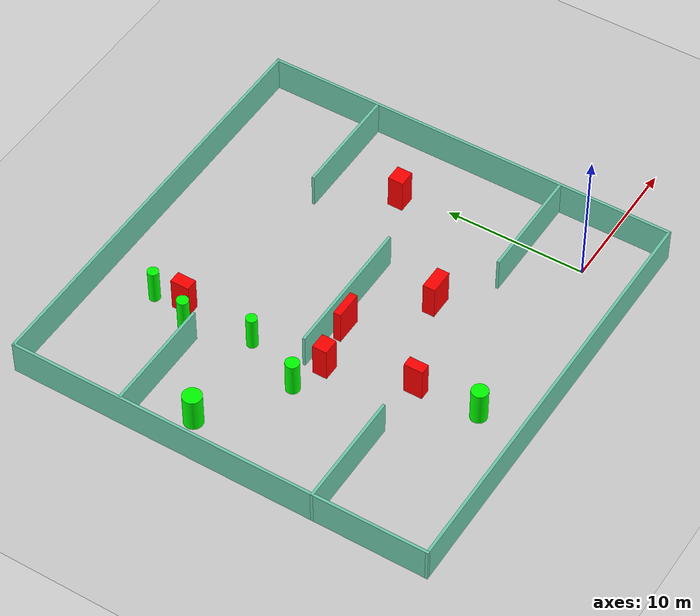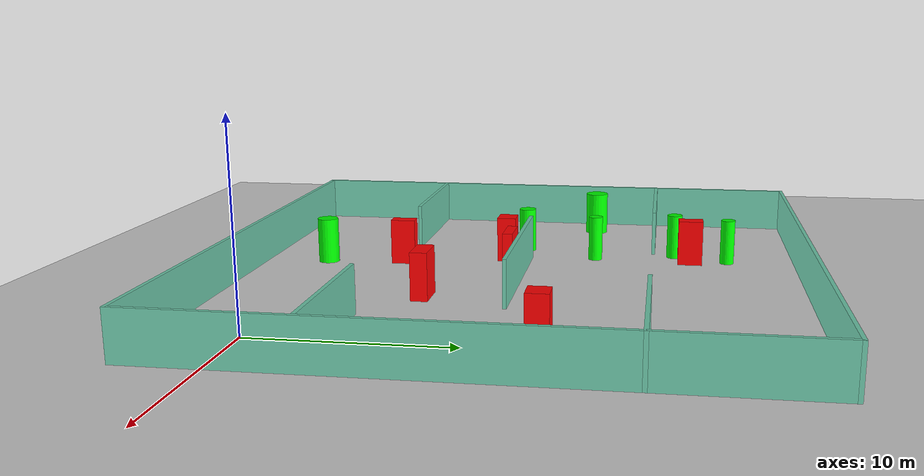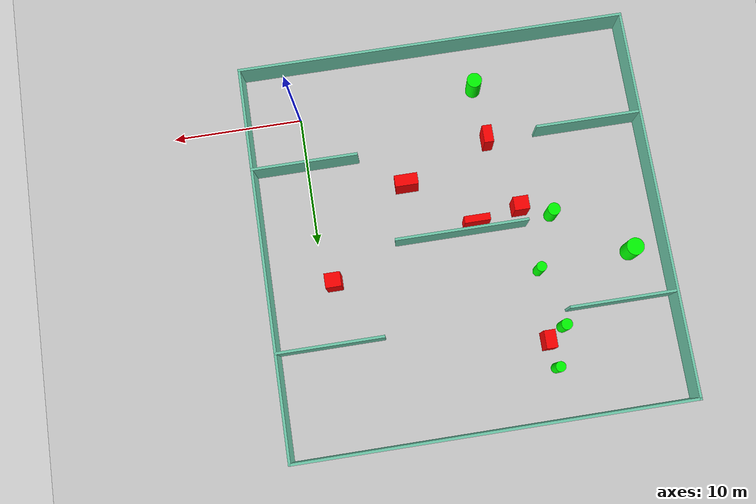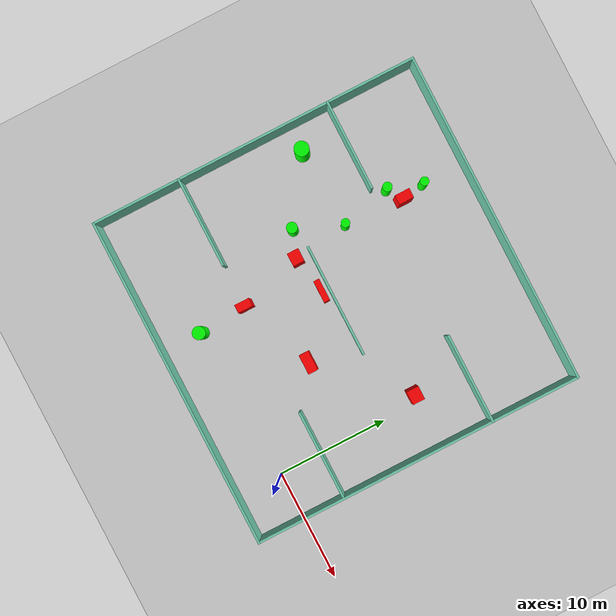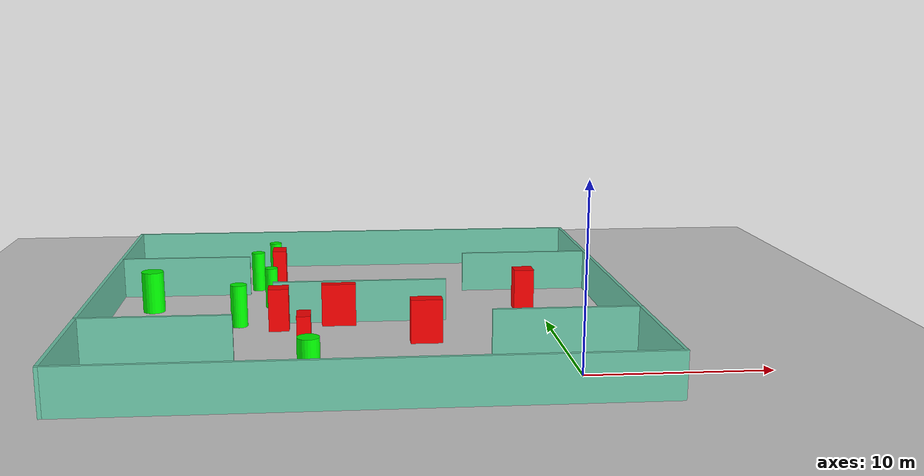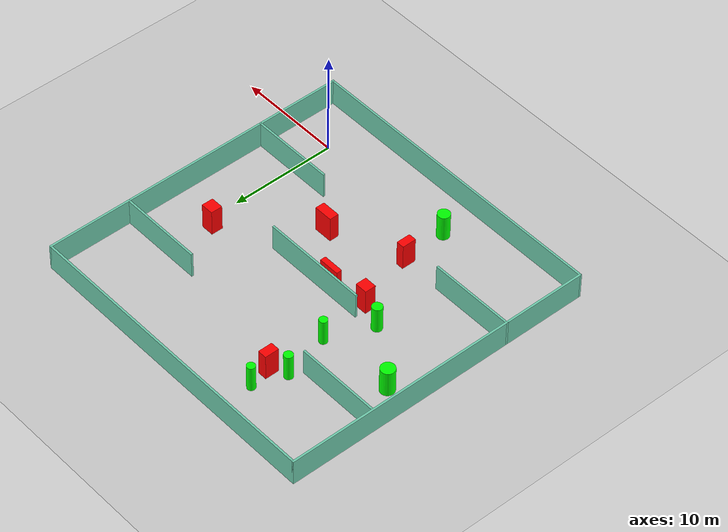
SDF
<sdf version="1.7">
 <world name="default">
  <light name="sun" type="directional">
   <pose>0 0 10 0 -0 0</pose>
   <diffuse>0.8 0.8 0.8 1</diffuse>
   <specular>0.2 0.2 0.2 1</specular>
   <attenuation>
    <range>1000</range>
    <constant>0.9</constant>
    <linear>0.01</linear>
    <quadratic>0.001</quadratic>
   </attenuation>
   <direction>-0.5 0.1 -0.9</direction>
   <spot><inner_angle>0</inner_angle><outer_angle>0</outer_angle><falloff>0</falloff></spot>
  </light>
  <model name="ground_plane">
   <static>1</static>
   <link name="link">
    <collision name="collision">
     <geometry><plane><normal>0 0 1</normal><size>100 100</size></plane></geometry>
     <surface>
      <contact><collide_bitmask>65535</collide_bitmask></contact>
      <friction><ode><mu>100</mu><mu2>50</mu2></ode></friction>
     </surface>
    </collision>
    <visual name="visual">
     <cast_shadows>0</cast_shadows>
     <geometry><plane><normal>0 0 1</normal><size>100 100</size></plane></geometry>
     <material>
      <script><uri>file://media/materials/scripts/gazebo.material</uri><name>Gazebo/Grey</name></script>
     </material>
    </visual>
   </link>
  </model>
  <gravity>0 0 -9.8</gravity>
  <magnetic_field>6e-06 2.3e-05 -4.2e-05</magnetic_field>
  <atmosphere type="adiabatic"/>
  <physics type="ode">
   <max_step_size>0.001</max_step_size>
   <real_time_factor>1</real_time_factor>
   <real_time_update_rate>1000</real_time_update_rate>
  </physics>
  <scene><ambient>0.4 0.4 0.4 1</ambient><background>0.7 0.7 0.7 1</background><shadows>1</shadows></scene>
  <spherical_coordinates>
   <surface_model>EARTH_WGS84</surface_model>
   <latitude_deg>0</latitude_deg>
   <longitude_deg>0</longitude_deg>
   <elevation>0</elevation>
   <heading_deg>0</heading_deg>
  </spherical_coordinates>
  <model name="my_base_walls">
   <link name="Wall_10">
    <collision name="Wall_10_Collision">
     <geometry><box><size>8.2 0.2 2.5</size></box></geometry>
     <pose>0 0 1.25 0 -0 0</pose>
    </collision>
    <visual name="Wall_10_Visual">
     <pose>0 0 1.25 0 -0 0</pose>
     <geometry><box><size>8.2 0.2 2.5</size></box></geometry>
     <material>
      <script><uri>file://media/materials/scripts/gazebo.material</uri><name>Gazebo/Grey</name></script>
      <ambient>0.435294 0.796078 0.67451 1</ambient>
     </material>
     <meta><layer>0</layer></meta>
    </visual>
    <pose>-11 -7 0 0 -0 0</pose>
   </link>
   <link name="Wall_12">
    <collision name="Wall_12_Collision">
     <geometry><box><size>8.2 0.2 2.5</size></box></geometry>
     <pose>0 0 1.25 0 -0 0</pose>
    </collision>
    <visual name="Wall_12_Visual">
     <pose>0 0 1.25 0 -0 0</pose>
     <geometry><box><size>8.2 0.2 2.5</size></box></geometry>
     <material>
      <script><uri>file://media/materials/scripts/gazebo.material</uri><name>Gazebo/Grey</name></script>
      <ambient>0.435294 0.796078 0.67451 1</ambient>
     </material>
     <meta><layer>0</layer></meta>
    </visual>
    <pose>-11 7 0 0 -0 0</pose>
   </link>
   <link name="Wall_14">
    <collision name="Wall_14_Collision">
     <geometry><box><size>8.2 0.2 2.5</size></box></geometry>
     <pose>0 0 1.25 0 -0 0</pose>
    </collision>
    <visual name="Wall_14_Visual">
     <pose>0 0 1.25 0 -0 0</pose>
     <geometry><box><size>8.2 0.2 2.5</size></box></geometry>
     <material>
      <script><uri>file://media/materials/scripts/gazebo.material</uri><name>Gazebo/Grey</name></script>
      <ambient>0.435294 0.796078 0.67451 1</ambient>
     </material>
     <meta><layer>0</layer></meta>
    </visual>
    <pose>11 7 0 0 -0 3.14159</pose>
   </link>
   <link name="Wall_16">
    <collision name="Wall_16_Collision">
     <geometry><box><size>10.2 0.2 2.5</size></box></geometry>
     <pose>0 0 1.25 0 -0 0</pose>
    </collision>
    <visual name="Wall_16_Visual">
     <pose>0 0 1.25 0 -0 0</pose>
     <geometry><box><size>10.2 0.2 2.5</size></box></geometry>
     <material>
      <script><uri>file://media/materials/scripts/gazebo.material</uri><name>Gazebo/Grey</name></script>
      <ambient>0.435294 0.796078 0.67451 1</ambient>
     </material>
     <meta><layer>0</layer></meta>
    </visual>
    <pose>0 0 0 0 -0 3.14159</pose>
   </link>
   <link name="Wall_2">
    <collision name="Wall_2_Collision">
     <geometry><box><size>30.2 0.2 2.5</size></box></geometry>
     <pose>0 0 1.25 0 -0 0</pose>
    </collision>
    <visual name="Wall_2_Visual">
     <pose>0 0 1.25 0 -0 0</pose>
     <geometry><box><size>30.2 0.2 2.5</size></box></geometry>
     <material>
      <script><uri>file://media/materials/scripts/gazebo.material</uri><name>Gazebo/Grey</name></script>
      <ambient>0.435294 0.796078 0.67451 1</ambient>
     </material>
     <meta><layer>0</layer></meta>
    </visual>
    <pose>0 -15 0 0 -0 3.14159</pose>
   </link>
   <link name="Wall_3">
    <collision name="Wall_3_Collision">
     <geometry><box><size>30.2 0.2 2.5</size></box></geometry>
     <pose>0 0 1.25 0 -0 0</pose>
    </collision>
    <visual name="Wall_3_Visual">
     <pose>0 0 1.25 0 -0 0</pose>
     <geometry><box><size>30.2 0.2 2.5</size></box></geometry>
     <material>
      <script><uri>file://media/materials/scripts/gazebo.material</uri><name>Gazebo/Grey</name></script>
      <ambient>0.435294 0.796078 0.67451 1</ambient>
     </material>
     <meta><layer>0</layer></meta>
    </visual>
    <pose>-15 0 0 0 -0 1.5708</pose>
   </link>
   <link name="Wall_4">
    <collision name="Wall_4_Collision">
     <geometry><box><size>30.2 0.2 2.5</size></box></geometry>
     <pose>0 0 1.25 0 -0 0</pose>
    </collision>
    <visual name="Wall_4_Visual">
     <pose>0 0 1.25 0 -0 0</pose>
     <geometry><box><size>30.2 0.2 2.5</size></box></geometry>
     <material>
      <script><uri>file://media/materials/scripts/gazebo.material</uri><name>Gazebo/Grey</name></script>
      <ambient>0.435294 0.796078 0.67451 1</ambient>
     </material>
     <meta><layer>0</layer></meta>
    </visual>
    <pose>0 15 0 0 -0 0</pose>
   </link>
   <link name="Wall_6">
    <collision name="Wall_6_Collision">
     <geometry><box><size>30.2 0.2 2.5</size></box></geometry>
     <pose>0 0 1.25 0 -0 0</pose>
    </collision>
    <visual name="Wall_6_Visual">
     <pose>0 0 1.25 0 -0 0</pose>
     <geometry><box><size>30.2 0.2 2.5</size></box></geometry>
     <material>
      <script><uri>file://media/materials/scripts/gazebo.material</uri><name>Gazebo/Grey</name></script>
      <ambient>0.435294 0.796078 0.67451 1</ambient>
     </material>
     <meta><layer>0</layer></meta>
    </visual>
    <pose>15 0 0 0 -0 1.5708</pose>
   </link>
   <link name="Wall_8">
    <collision name="Wall_8_Collision">
     <geometry><box><size>8.2 0.2 2.5</size></box></geometry>
     <pose>0 0 1.25 0 -0 0</pose>
    </collision>
    <visual name="Wall_8_Visual">
     <pose>0 0 1.25 0 -0 0</pose>
     <geometry><box><size>8.2 0.2 2.5</size></box></geometry>
     <material>
      <script><uri>file://media/materials/scripts/gazebo.material</uri><name>Gazebo/Grey</name></script>
      <ambient>0.435294 0.796078 0.67451 1</ambient>
     </material>
     <meta><layer>0</layer></meta>
    </visual>
    <pose>11 -7 0 0 -0 3.14159</pose>
   </link>
   <static>1</static>
   <pose>-11 11 0 0 -0 0</pose>
  </model>
  <model name="cylinder1">
   <static>1</static>
   <link name="link">
    <inertial>
     <mass>1</mass>
     <inertia><ixx>0.5</ixx><ixy>0</ixy><ixz>0</ixz><iyy>0.5</iyy><iyz>0</iyz><izz>1</izz></inertia>
    </inertial>
    <collision name="collision">
     <geometry><cylinder><radius>0.4829916248913542</radius><length>2.5</length></cylinder></geometry>
    </collision>
    <visual name="visual">
     <geometry><cylinder><radius>0.4829916248913542</radius><length>2.5</length></cylinder></geometry>
     <material>
      <ambient>0 1 0 1</ambient>
      <diffuse>0 1 0 1</diffuse>
      <specular>0.1 0.1 0.1 1</specular>
      <emissive>0 0 0 0</emissive>
     </material>
    </visual>
   </link>
   <pose>-18.079128598834416 10.54996172985847 1.25 0 0 0</pose>
  </model>
  <model name="cylinder2">
   <static>1</static>
   <link name="link">
    <inertial>
     <mass>1</mass>
     <inertia><ixx>0.5</ixx><ixy>0</ixy><ixz>0</ixz><iyy>0.5</iyy><iyz>0</iyz><izz>1</izz></inertia>
    </inertial>
    <collision name="collision">
     <geometry><cylinder><radius>0.38866684390527195</radius><length>2.5</length></cylinder></geometry>
    </collision>
    <visual name="visual">
     <geometry><cylinder><radius>0.38866684390527195</radius><length>2.5</length></cylinder></geometry>
     <material>
      <ambient>0 1 0 1</ambient>
      <diffuse>0 1 0 1</diffuse>
      <specular>0.1 0.1 0.1 1</specular>
      <emissive>0 0 0 0</emissive>
     </material>
    </visual>
   </link>
   <pose>-16.423744614341185 22.16459099484936 1.25 0 0 0</pose>
  </model>
  <model name="cylinder3">
   <static>1</static>
   <link name="link">
    <inertial>
     <mass>1</mass>
     <inertia><ixx>0.5</ixx><ixy>0</ixy><ixz>0</ixz><iyy>0.5</iyy><iyz>0</iyz><izz>1</izz></inertia>
    </inertial>
    <collision name="collision">
     <geometry><cylinder><radius>0.5746431844964659</radius><length>2.5</length></cylinder></geometry>
    </collision>
    <visual name="visual">
     <geometry><cylinder><radius>0.5746431844964659</radius><length>2.5</length></cylinder></geometry>
     <material>
      <ambient>0 1 0 1</ambient>
      <diffuse>0 1 0 1</diffuse>
      <specular>0.1 0.1 0.1 1</specular>
      <emissive>0 0 0 0</emissive>
     </material>
    </visual>
   </link>
   <pose>-13.85202267967708 -0.3946790303369525 1.25 0 0 0</pose>
  </model>
  <model name="cylinder4">
   <static>1</static>
   <link name="link">
    <inertial>
     <mass>1</mass>
     <inertia><ixx>0.5</ixx><ixy>0</ixy><ixz>0</ixz><iyy>0.5</iyy><iyz>0</iyz><izz>1</izz></inertia>
    </inertial>
    <collision name="collision">
     <geometry><cylinder><radius>0.6616141906937063</radius><length>2.5</length></cylinder></geometry>
    </collision>
    <visual name="visual">
     <geometry><cylinder><radius>0.6616141906937063</radius><length>2.5</length></cylinder></geometry>
     <material>
      <ambient>0 1 0 1</ambient>
      <diffuse>0 1 0 1</diffuse>
      <specular>0.1 0.1 0.1 1</specular>
      <emissive>0 0 0 0</emissive>
     </material>
    </visual>
   </link>
   <pose>-23.55124389132658 14.29696255448708 1.25 0 0 0</pose>
  </model>
  <model name="cylinder5">
   <static>1</static>
   <link name="link">
    <inertial>
     <mass>1</mass>
     <inertia><ixx>0.5</ixx><ixy>0</ixy><ixz>0</ixz><iyy>0.5</iyy><iyz>0</iyz><izz>1</izz></inertia>
    </inertial>
    <collision name="collision">
     <geometry><cylinder><radius>0.3860568205090012</radius><length>2.5</length></cylinder></geometry>
    </collision>
    <visual name="visual">
     <geometry><cylinder><radius>0.3860568205090012</radius><length>2.5</length></cylinder></geometry>
     <material>
      <ambient>0 1 0 1</ambient>
      <diffuse>0 1 0 1</diffuse>
      <specular>0.1 0.1 0.1 1</specular>
      <emissive>0 0 0 0</emissive>
     </material>
    </visual>
   </link>
   <pose>-16.374368111823344 14.700431419770617 1.25 0 0 0</pose>
  </model>
  <model name="cylinder6">
   <static>1</static>
   <link name="link">
    <inertial>
     <mass>1</mass>
     <inertia><ixx>0.5</ixx><ixy>0</ixy><ixz>0</ixz><iyy>0.5</iyy><iyz>0</iyz><izz>1</izz></inertia>
    </inertial>
    <collision name="collision">
     <geometry><cylinder><radius>0.41913732341794036</radius><length>2.5</length></cylinder></geometry>
    </collision>
    <visual name="visual">
     <geometry><cylinder><radius>0.41913732341794036</radius><length>2.5</length></cylinder></geometry>
     <material>
      <ambient>0 1 0 1</ambient>
      <diffuse>0 1 0 1</diffuse>
      <specular>0.1 0.1 0.1 1</specular>
      <emissive>0 0 0 0</emissive>
     </material>
    </visual>
   </link>
   <pose>-17.43570713507125 19.1961302527015 1.25 0 0 0</pose>
  </model>
  <model name="box1">
   <static>1</static>
   <link name="link">
    <inertial>
     <mass>1</mass>
     <inertia><ixx>0.083</ixx><ixy>0</ixy><ixz>0</ixz><iyy>0.083</iyy><iyz>0</iyz><izz>0.083</izz></inertia>
    </inertial>
    <collision name="collision">
     <geometry><box><size>1.1662304023843453 1.0444477924271776 2.5</size></box></geometry>
    </collision>
    <visual name="visual">
     <geometry><box><size>1.1662304023843453 1.0444477924271776 2.5</size></box></geometry>
     <material>
      <ambient>1 0 0 1</ambient>
      <diffuse>1 0 0 1</diffuse>
      <specular>0.1 0.1 0.1 1</specular>
      <emissive>0 0 0 0</emissive>
     </material>
    </visual>
    <sensor name="my_contact" type="contact">
     <contact><collision>box_collision</collision><topic>__default_topic__</topic></contact>
    </sensor>
   </link>
   <pose>-15.733452164200333 9.697245720200604 1.25 0 0 0</pose>
  </model>
  <model name="box2">
   <static>1</static>
   <link name="link">
    <inertial>
     <mass>1</mass>
     <inertia><ixx>0.083</ixx><ixy>0</ixy><ixz>0</ixz><iyy>0.083</iyy><iyz>0</iyz><izz>0.083</izz></inertia>
    </inertial>
    <collision name="collision">
     <geometry><box><size>1.7804841672032312 0.8798342877645817 2.5</size></box></geometry>
    </collision>
    <visual name="visual">
     <geometry><box><size>1.7804841672032312 0.8798342877645817 2.5</size></box></geometry>
     <material>
      <ambient>1 0 0 1</ambient>
      <diffuse>1 0 0 1</diffuse>
      <specular>0.1 0.1 0.1 1</specular>
      <emissive>0 0 0 0</emissive>
     </material>
    </visual>
    <sensor name="my_contact" type="contact">
     <contact><collision>box_collision</collision><topic>__default_topic__</topic></contact>
    </sensor>
   </link>
   <pose>-7.446236677447299 6.589635795043776 1.25 0 0 0</pose>
  </model>
  <model name="box3">
   <static>1</static>
   <link name="link">
    <inertial>
     <mass>1</mass>
     <inertia><ixx>0.083</ixx><ixy>0</ixy><ixz>0</ixz><iyy>0.083</iyy><iyz>0</iyz><izz>0.083</izz></inertia>
    </inertial>
    <collision name="collision">
     <geometry><box><size>1.9849699128878855 0.5317540283955303 2.5</size></box></geometry>
    </collision>
    <visual name="visual">
     <geometry><box><size>1.9849699128878855 0.5317540283955303 2.5</size></box></geometry>
     <material>
      <ambient>1 0 0 1</ambient>
      <diffuse>1 0 0 1</diffuse>
      <specular>0.1 0.1 0.1 1</specular>
      <emissive>0 0 0 0</emissive>
     </material>
    </visual>
    <sensor name="my_contact" type="contact">
     <contact><collision>box_collision</collision><topic>__default_topic__</topic></contact>
    </sensor>
   </link>
   <pose>-12.27056416675801 10.33537796827302 1.25 0 0 0</pose>
  </model>
  <model name="box4">
   <static>1</static>
   <link name="link">
    <inertial>
     <mass>1</mass>
     <inertia><ixx>0.083</ixx><ixy>0</ixy><ixz>0</ixz><iyy>0.083</iyy><iyz>0</iyz><izz>0.083</izz></inertia>
    </inertial>
    <collision name="collision">
     <geometry><box><size>0.7441354420825647 1.3457365291676682 2.5</size></box></geometry>
    </collision>
    <visual name="visual">
     <geometry><box><size>0.7441354420825647 1.3457365291676682 2.5</size></box></geometry>
     <material>
      <ambient>1 0 0 1</ambient>
      <diffuse>1 0 0 1</diffuse>
      <specular>0.1 0.1 0.1 1</specular>
      <emissive>0 0 0 0</emissive>
     </material>
    </visual>
    <sensor name="my_contact" type="contact">
     <contact><collision>box_collision</collision><topic>__default_topic__</topic></contact>
    </sensor>
   </link>
   <pose>-14.16320134403805 3.974200678635646 1.25 0 0 0</pose>
  </model>
  <model name="box5">
   <static>1</static>
   <link name="link">
    <inertial>
     <mass>1</mass>
     <inertia><ixx>0.083</ixx><ixy>0</ixy><ixz>0</ixz><iyy>0.083</iyy><iyz>0</iyz><izz>0.083</izz></inertia>
    </inertial>
    <collision name="collision">
     <geometry><box><size>0.8590198255814979 1.3544335182024896 2.5</size></box></geometry>
    </collision>
    <visual name="visual">
     <geometry><box><size>0.8590198255814979 1.3544335182024896 2.5</size></box></geometry>
     <material>
      <ambient>1 0 0 1</ambient>
      <diffuse>1 0 0 1</diffuse>
      <specular>0.1 0.1 0.1 1</specular>
      <emissive>0 0 0 0</emissive>
     </material>
    </visual>
    <sensor name="my_contact" type="contact">
     <contact><collision>box_collision</collision><topic>__default_topic__</topic></contact>
    </sensor>
   </link>
   <pose>-16.07340541207031 20.07912966576409 1.25 0 0 0</pose>
  </model>
  <model name="box6">
   <static>1</static>
   <link name="link">
    <inertial>
     <mass>1</mass>
     <inertia><ixx>0.083</ixx><ixy>0</ixy><ixz>0</ixz><iyy>0.083</iyy><iyz>0</iyz><izz>0.083</izz></inertia>
    </inertial>
    <collision name="collision">
     <geometry><box><size>1.2051582303095913 1.1014078278008963 2.5</size></box></geometry>
    </collision>
    <visual name="visual">
     <geometry><box><size>1.2051582303095913 1.1014078278008963 2.5</size></box></geometry>
     <material>
      <ambient>1 0 0 1</ambient>
      <diffuse>1 0 0 1</diffuse>
      <specular>0.1 0.1 0.1 1</specular>
      <emissive>0 0 0 0</emissive>
     </material>
    </visual>
    <sensor name="my_contact" type="contact">
     <contact><collision>box_collision</collision><topic>__default_topic__</topic></contact>
    </sensor>
   </link>
   <pose>-0.8877947439224201 13.280370876057056 1.25 0 0 0</pose>
  </model>
 </world>
</sdf>
